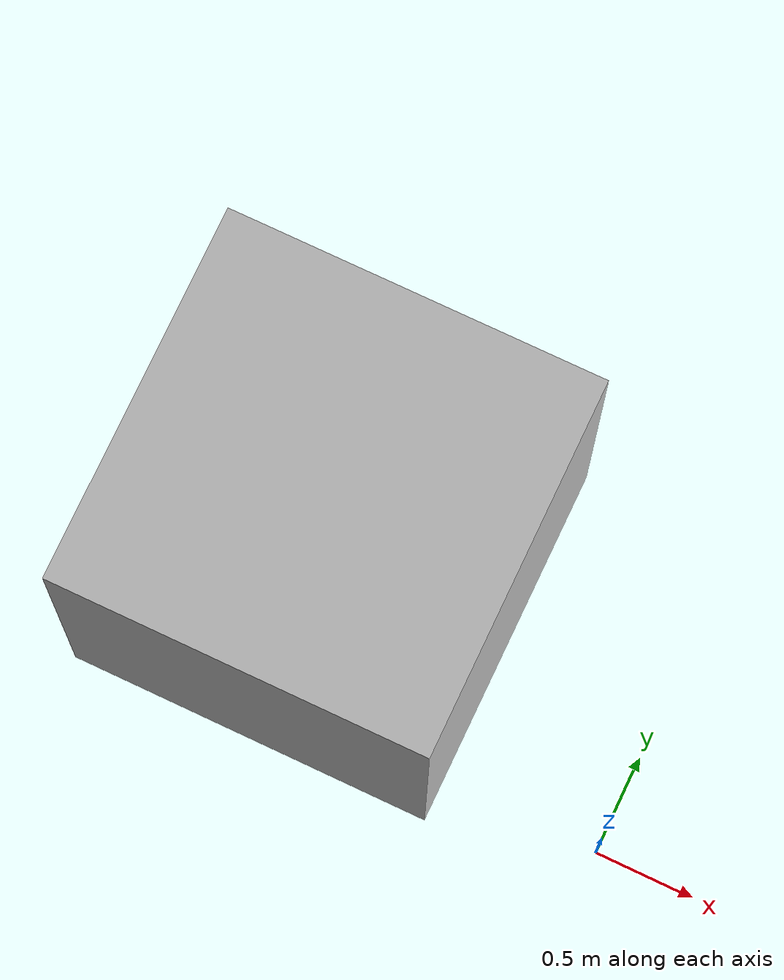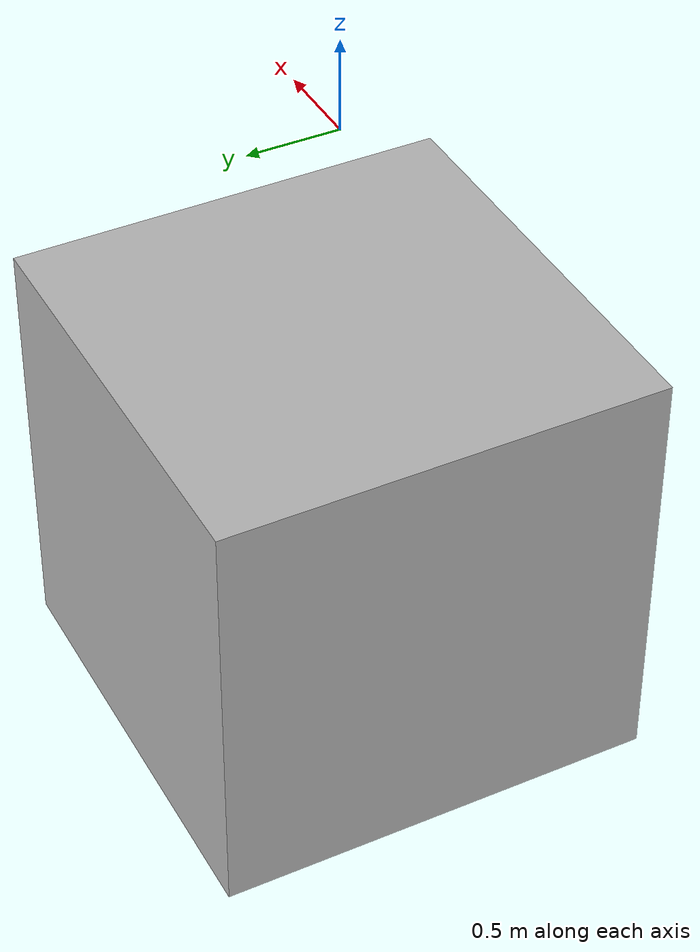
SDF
<?xml version='1.0'?>
<sdf version='1.4'>
  <model name="brick model">
    <static>true</static>
    <pose>0 0 0 0 0 0</pose>

    <link name="brick model">
      <visual name="panel">
        <geometry>
          <mesh>
            <uri>model://brick_model1/brick_model.dae</uri>
          </mesh>
        </geometry>
      </visual>
      <collision name="brick_model">
        <geometry>
          <mesh>
            <uri>model://brick_model1/brick_model.dae</uri>
          </mesh>
        </geometry>
      </collision>
    </link>

  </model>
</sdf>
